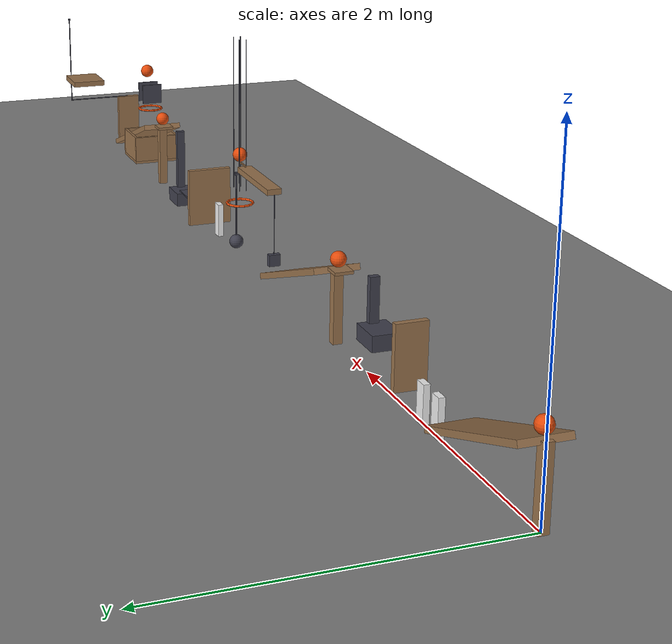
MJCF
<mujoco model="gravity_cascade_with_passive_guides">
  <compiler angle="radian"/>
  <option timestep="0.002"/>
  <worldbody>
    <geom name="floor" type="plane" size="16 16 0.1" friction="0.7 0 0"/>
    <body name="ramp1">
      <geom name="ramp1_deck" type="box" pos="0.469846 0 0.302216" size="0.5 0.15 0.02" euler="0 0.349066 0" friction="0.7 0 0" solref="0.01 0.690107" rgba="0.6 0.45 0.3 1"/>
      <geom name="ramp1_leg" type="box" pos="0 0 0.236613" size="0.03 0.03 0.236613" friction="0.7 0 0" solref="0.01 0.690107" rgba="0.6 0.45 0.3 1"/>
    </body>
    <body name="ball1" pos="0.0239414 0 0.539005">
      <freejoint/>
      <geom name="ball1" type="sphere" pos="0 0 0" size="0.05" mass="0.2" condim="6" friction="0.7 0 0" solref="0.01 0.690107" rgba="0.9 0.3 0.05 1"/>
    </body>
    <body name="domino1" pos="1.08653 0 0.12">
      <freejoint/>
      <geom name="domino1" type="box" pos="0 0 0" size="0.04 0.02 0.12" mass="0.25" friction="0.7 0 0" solref="0.01 0.690107" rgba="0.95 0.95 0.95 1"/>
    </body>
    <body name="domino2" pos="1.26653 0 0.12">
      <freejoint/>
      <geom name="domino2" type="box" pos="0 0 0" size="0.04 0.02 0.12" mass="0.25" friction="0.7 0 0" solref="0.01 0.690107" rgba="0.95 0.95 0.95 1"/>
    </body>
    <body name="flap1" pos="1.44653 0 0.12">
      <joint name="flap1_hinge" type="hinge" pos="0 0 0" axis="0 1 0" limited="true" range="0 1.13446" damping="0.04"/>
      <geom name="flap1" type="box" pos="0 0 0.2" size="0.02 0.1 0.2" mass="0.3" friction="0.7 0 0" solref="0.01 0.690107" rgba="0.6 0.45 0.3 1"/>
    </body>
    <body name="cart1" pos="1.85653 0 0.28">
      <joint name="cart1_track" type="slide" pos="0 0 0" axis="1 0 0" limited="true" range="0 0.55" damping="0.2"/>
      <geom name="cart1" type="box" pos="0 0 0" size="0.11 0.09 0.05" mass="0.498" friction="0.7 0 0" solref="0.01 0.690107" rgba="0.25 0.25 0.3 1"/>
      <geom name="cart1 pusher" type="box" pos="0.09 0 0.17" size="0.02 0.03 0.16" mass="0.002" friction="0.7 0 0" solref="0.01 0.690107" rgba="0.25 0.25 0.3 1"/>
    </body>
    <body name="ramp2">
      <geom name="ramp2_deck" type="box" pos="2.95454 0 0.302216" size="0.5 0.15 0.02" euler="0 0.349066 0" friction="0.7 0 0" solref="0.01 0.690107" rgba="0.6 0.45 0.3 1"/>
      <geom name="ramp2_leg" type="box" pos="2.48469 0 0.236613" size="0.03 0.03 0.236613" friction="0.7 0 0" solref="0.01 0.690107" rgba="0.6 0.45 0.3 1"/>
    </body>
    <body name="ramp2 starter">
      <geom name="ramp2 starter" type="box" pos="2.43153 0 0.48202" size="0.06 0.06 0.01" friction="0.7 0 0" solref="0.01 0.690107" rgba="0.6 0.45 0.3 1"/>
    </body>
    <body name="ball2" pos="2.46653 0 0.54202">
      <freejoint/>
      <geom name="ball2" type="sphere" pos="0 0 0" size="0.05" mass="0.2" condim="6" friction="0.7 0 0" solref="0.01 0.690107" rgba="0.9 0.3 0.05 1"/>
    </body>
    <body name="lever1" pos="7.74245 0 1.3">
      <joint name="lever1_hinge" type="hinge" pos="0 0 0" axis="0 1 0" limited="true" range="-0.785398 0" damping="0.04"/>
      <geom name="lever1" type="box" pos="-3.87123 0 -0.65" size="0.3 0.05 0.02" mass="0.49" friction="0.7 0 0" solref="0.01 0.690107" rgba="0.6 0.45 0.3 1"/>
      <geom name="lever1 left striker" type="box" pos="-4.17123 0 -1.12" size="0.02 0.04 0.04" mass="0.004" friction="0.7 0 0" solref="0.01 0.690107" rgba="0.25 0.25 0.3 1"/>
      <geom name="lever1 striker stem" type="capsule" size="0.003" fromto="-4.17123 0 -0.67 -4.17123 0 -1.08" mass="0.003" friction="0.7 0 0" solref="0.01 0.690107" rgba="0.25 0.25 0.3 1"/>
      <geom name="lever1 launch tongue" type="box" pos="-3.53623 0 -0.625" size="0.065 0.005 0.005" mass="0.003" friction="0.7 0 0" solref="0.01 0.690107" rgba="0.6 0.45 0.3 1"/>
    </body>
    <body name="ball3" pos="4.26623 0 0.73">
      <freejoint/>
      <geom name="ball3" type="sphere" pos="0 0 0" size="0.05" mass="0.2" condim="6" friction="0.7 0 0" solref="0.01 0.690107" rgba="0.9 0.3 0.05 1"/>
    </body>
    <body name="ball3 guide near left">
      <geom name="ball3 guide near left" type="box" pos="4.20623 0.025 1.015" size="0.002 0.002 0.535" friction="0.7 0 0" solref="0.01 0.690107" rgba="0.25 0.25 0.3 1"/>
    </body>
    <body name="ball3 guide near right">
      <geom name="ball3 guide near right" type="box" pos="4.20623 -0.025 1.015" size="0.002 0.002 0.535" friction="0.7 0 0" solref="0.01 0.690107" rgba="0.25 0.25 0.3 1"/>
    </body>
    <body name="ball3 guide far left">
      <geom name="ball3 guide far left" type="box" pos="4.32623 0.025 1.015" size="0.002 0.002 0.535" friction="0.7 0 0" solref="0.01 0.690107" rgba="0.25 0.25 0.3 1"/>
    </body>
    <body name="ball3 guide far right">
      <geom name="ball3 guide far right" type="box" pos="4.32623 -0.025 1.015" size="0.002 0.002 0.535" friction="0.7 0 0" solref="0.01 0.690107" rgba="0.25 0.25 0.3 1"/>
    </body>
    <body name="ring1">
      <geom name="ring1_00" type="capsule" size="0.008" fromto="4.35823 0 0.38 4.35122 0.0352069 0.38" friction="0.7 0 0" solref="0.01 0.690107" rgba="0.9 0.3 0.05 1"/>
      <geom name="ring1_01" type="capsule" size="0.008" fromto="4.35122 0.0352069 0.38 4.33128 0.0650538 0.38" friction="0.7 0 0" solref="0.01 0.690107" rgba="0.9 0.3 0.05 1"/>
      <geom name="ring1_02" type="capsule" size="0.008" fromto="4.33128 0.0650538 0.38 4.30143 0.0849969 0.38" friction="0.7 0 0" solref="0.01 0.690107" rgba="0.9 0.3 0.05 1"/>
      <geom name="ring1_03" type="capsule" size="0.008" fromto="4.30143 0.0849969 0.38 4.26623 0.092 0.38" friction="0.7 0 0" solref="0.01 0.690107" rgba="0.9 0.3 0.05 1"/>
      <geom name="ring1_04" type="capsule" size="0.008" fromto="4.26623 0.092 0.38 4.23102 0.0849969 0.38" friction="0.7 0 0" solref="0.01 0.690107" rgba="0.9 0.3 0.05 1"/>
      <geom name="ring1_05" type="capsule" size="0.008" fromto="4.23102 0.0849969 0.38 4.20117 0.0650538 0.38" friction="0.7 0 0" solref="0.01 0.690107" rgba="0.9 0.3 0.05 1"/>
      <geom name="ring1_06" type="capsule" size="0.008" fromto="4.20117 0.0650538 0.38 4.18123 0.0352069 0.38" friction="0.7 0 0" solref="0.01 0.690107" rgba="0.9 0.3 0.05 1"/>
      <geom name="ring1_07" type="capsule" size="0.008" fromto="4.18123 0.0352069 0.38 4.17423 1.12668e-17 0.38" friction="0.7 0 0" solref="0.01 0.690107" rgba="0.9 0.3 0.05 1"/>
      <geom name="ring1_08" type="capsule" size="0.008" fromto="4.17423 1.12668e-17 0.38 4.18123 -0.0352069 0.38" friction="0.7 0 0" solref="0.01 0.690107" rgba="0.9 0.3 0.05 1"/>
      <geom name="ring1_09" type="capsule" size="0.008" fromto="4.18123 -0.0352069 0.38 4.20117 -0.0650538 0.38" friction="0.7 0 0" solref="0.01 0.690107" rgba="0.9 0.3 0.05 1"/>
      <geom name="ring1_10" type="capsule" size="0.008" fromto="4.20117 -0.0650538 0.38 4.23102 -0.0849969 0.38" friction="0.7 0 0" solref="0.01 0.690107" rgba="0.9 0.3 0.05 1"/>
      <geom name="ring1_11" type="capsule" size="0.008" fromto="4.23102 -0.0849969 0.38 4.26623 -0.092 0.38" friction="0.7 0 0" solref="0.01 0.690107" rgba="0.9 0.3 0.05 1"/>
      <geom name="ring1_12" type="capsule" size="0.008" fromto="4.26623 -0.092 0.38 4.30143 -0.0849969 0.38" friction="0.7 0 0" solref="0.01 0.690107" rgba="0.9 0.3 0.05 1"/>
      <geom name="ring1_13" type="capsule" size="0.008" fromto="4.30143 -0.0849969 0.38 4.33128 -0.0650538 0.38" friction="0.7 0 0" solref="0.01 0.690107" rgba="0.9 0.3 0.05 1"/>
      <geom name="ring1_14" type="capsule" size="0.008" fromto="4.33128 -0.0650538 0.38 4.35122 -0.0352069 0.38" friction="0.7 0 0" solref="0.01 0.690107" rgba="0.9 0.3 0.05 1"/>
      <geom name="ring1_15" type="capsule" size="0.008" fromto="4.35122 -0.0352069 0.38 4.35823 -2.25335e-17 0.38" friction="0.7 0 0" solref="0.01 0.690107" rgba="0.9 0.3 0.05 1"/>
    </body>
    <body name="pendulum1" pos="8.69245 0 0.64">
      <joint name="pendulum1_hinge" type="hinge" pos="0 0 0" axis="0 1 0" limited="true" range="-0.698132 0" damping="0.04"/>
      <geom name="pendulum1" type="sphere" pos="-4.34623 0 -0.57" size="0.05" mass="0.05" friction="0.7 0 0" solref="0.01 0.690107" rgba="0.25 0.25 0.3 1"/>
      <geom name="pendulum1 rod" type="capsule" size="0.005" fromto="-4.34623 0 -0.07 -4.34623 0 -0.52" mass="0.005" friction="0.7 0 0" solref="0.01 0.690107" rgba="0.25 0.25 0.3 1"/>
      <geom name="pendulum1 pivot ballast" type="box" pos="-4.34623 0 -0.07" size="0.01 0.01 0.01" mass="0.295" friction="0.7 0 0" solref="0.01 0.690107" rgba="0.25 0.25 0.3 1"/>
    </body>
    <body name="domino3" pos="4.73482 0 0.12">
      <freejoint/>
      <geom name="domino3" type="box" pos="0 0 0" size="0.04 0.02 0.12" mass="0.25" friction="0.7 0 0" solref="0.01 0.690107" rgba="0.95 0.95 0.95 1"/>
    </body>
    <body name="door1" pos="4.97482 0 0.02">
      <joint name="door1_hinge" type="hinge" pos="0 0 0" axis="0 1 0" limited="true" range="0 1.22173" damping="0.04"/>
      <geom name="door1" type="box" pos="0 0 0.21" size="0.02 0.16 0.21" mass="0.45" friction="0.7 0 0" solref="0.01 0.690107" rgba="0.6 0.45 0.3 1"/>
    </body>
    <body name="block1" pos="5.09482 0 0.06">
      <freejoint/>
      <geom name="block1" type="box" pos="0 0 0" size="0.06 0.06 0.06" mass="0.35" friction="0.7 0 0" solref="0.01 0.690107" rgba="0.6 0.45 0.3 1"/>
    </body>
    <body name="block1 guide roof">
      <geom name="block1 guide roof" type="box" pos="5.26982 0 0.126" size="0.25 0.065 0.005" friction="0.7 0 0" solref="0.01 0.690107" rgba="0.25 0.25 0.3 1"/>
    </body>
    <body name="cart2" pos="5.61482 0 0.055">
      <joint name="cart2_track" type="slide" pos="0 0 0" axis="1 0 0" limited="true" range="0 0.5" damping="0.2"/>
      <geom name="cart2" type="box" pos="0 0 0" size="0.11 0.09 0.05" mass="0.498" friction="0.7 0 0" solref="0.01 0.690107" rgba="0.25 0.25 0.3 1"/>
      <geom name="cart2 pusher" type="box" pos="0.09 0 0.27" size="0.02 0.03 0.23" mass="0.002" friction="0.7 0 0" solref="0.01 0.690107" rgba="0.25 0.25 0.3 1"/>
    </body>
    <body name="ramp3">
      <geom name="ramp3_deck" type="box" pos="6.68283 0 0.302216" size="0.5 0.15 0.02" euler="0 0.349066 0" friction="0.7 0 0" solref="0.01 0.690107" rgba="0.6 0.45 0.3 1"/>
      <geom name="ramp3_leg" type="box" pos="6.21298 0 0.236613" size="0.03 0.03 0.236613" friction="0.7 0 0" solref="0.01 0.690107" rgba="0.6 0.45 0.3 1"/>
    </body>
    <body name="ramp3 starter">
      <geom name="ramp3 starter" type="box" pos="6.15982 0 0.48202" size="0.06 0.06 0.01" friction="0.7 0 0" solref="0.01 0.690107" rgba="0.6 0.45 0.3 1"/>
    </body>
    <body name="ball4" pos="6.19482 0 0.54202">
      <freejoint/>
      <geom name="ball4" type="sphere" pos="0 0 0" size="0.05" mass="0.2" condim="6" friction="0.7 0 0" solref="0.01 0.690107" rgba="0.9 0.3 0.05 1"/>
    </body>
    <body name="flap2" pos="7.27952 0 0.5">
      <joint name="flap2_hinge" type="hinge" pos="0 0 0" axis="0 1 0" limited="true" range="-1.0472 0" damping="0.04"/>
      <geom name="flap2" type="box" pos="0 0 -0.19" size="0.02 0.09 0.19" mass="0.277" friction="0.7 0 0" solref="0.01 0.690107" rgba="0.6 0.45 0.3 1"/>
      <geom name="flap2 outboard bridge" type="capsule" size="0.004" fromto="0 0 0 0 0.5 0" mass="0.001" friction="0.7 0 0" solref="0.01 0.690107" rgba="0.25 0.25 0.3 1"/>
      <geom name="flap2 upper striker" type="capsule" size="0.004" fromto="0 0.5 0 0 0.5 0.7" mass="0.001" friction="0.7 0 0" solref="0.01 0.690107" rgba="0.25 0.25 0.3 1"/>
      <geom name="flap2 striker cap" type="box" pos="0 0.5 0.7" size="0.008 0.008 0.008" mass="0.001" friction="0.7 0 0" solref="0.01 0.690107" rgba="0.25 0.25 0.3 1"/>
    </body>
    <body name="shelf1">
      <geom name="shelf1" type="box" pos="6.7583 0.5 0.78" size="0.15 0.125 0.02" friction="0.7 0 0" solref="0.01 0.690107" rgba="0.6 0.45 0.3 1"/>
    </body>
    <body name="ball5" pos="6.6333 0 0.85">
      <freejoint/>
      <geom name="ball5" type="sphere" pos="0 0 0" size="0.05" mass="0.2" condim="6" friction="0.7 0 0" solref="0.01 0.690107" rgba="0.9 0.3 0.05 1"/>
    </body>
    <body name="ring2">
      <geom name="ring2_00" type="capsule" size="0.008" fromto="6.6503 0 0.55 6.6433 0.0352069 0.55" friction="0.7 0 0" solref="0.01 0.690107" rgba="0.9 0.3 0.05 1"/>
      <geom name="ring2_01" type="capsule" size="0.008" fromto="6.6433 0.0352069 0.55 6.62335 0.0650538 0.55" friction="0.7 0 0" solref="0.01 0.690107" rgba="0.9 0.3 0.05 1"/>
      <geom name="ring2_02" type="capsule" size="0.008" fromto="6.62335 0.0650538 0.55 6.59351 0.0849969 0.55" friction="0.7 0 0" solref="0.01 0.690107" rgba="0.9 0.3 0.05 1"/>
      <geom name="ring2_03" type="capsule" size="0.008" fromto="6.59351 0.0849969 0.55 6.5583 0.092 0.55" friction="0.7 0 0" solref="0.01 0.690107" rgba="0.9 0.3 0.05 1"/>
      <geom name="ring2_04" type="capsule" size="0.008" fromto="6.5583 0.092 0.55 6.52309 0.0849969 0.55" friction="0.7 0 0" solref="0.01 0.690107" rgba="0.9 0.3 0.05 1"/>
      <geom name="ring2_05" type="capsule" size="0.008" fromto="6.52309 0.0849969 0.55 6.49324 0.0650538 0.55" friction="0.7 0 0" solref="0.01 0.690107" rgba="0.9 0.3 0.05 1"/>
      <geom name="ring2_06" type="capsule" size="0.008" fromto="6.49324 0.0650538 0.55 6.4733 0.0352069 0.55" friction="0.7 0 0" solref="0.01 0.690107" rgba="0.9 0.3 0.05 1"/>
      <geom name="ring2_07" type="capsule" size="0.008" fromto="6.4733 0.0352069 0.55 6.4663 1.12668e-17 0.55" friction="0.7 0 0" solref="0.01 0.690107" rgba="0.9 0.3 0.05 1"/>
      <geom name="ring2_08" type="capsule" size="0.008" fromto="6.4663 1.12668e-17 0.55 6.4733 -0.0352069 0.55" friction="0.7 0 0" solref="0.01 0.690107" rgba="0.9 0.3 0.05 1"/>
      <geom name="ring2_09" type="capsule" size="0.008" fromto="6.4733 -0.0352069 0.55 6.49324 -0.0650538 0.55" friction="0.7 0 0" solref="0.01 0.690107" rgba="0.9 0.3 0.05 1"/>
      <geom name="ring2_10" type="capsule" size="0.008" fromto="6.49324 -0.0650538 0.55 6.52309 -0.0849969 0.55" friction="0.7 0 0" solref="0.01 0.690107" rgba="0.9 0.3 0.05 1"/>
      <geom name="ring2_11" type="capsule" size="0.008" fromto="6.52309 -0.0849969 0.55 6.5583 -0.092 0.55" friction="0.7 0 0" solref="0.01 0.690107" rgba="0.9 0.3 0.05 1"/>
      <geom name="ring2_12" type="capsule" size="0.008" fromto="6.5583 -0.092 0.55 6.59351 -0.0849969 0.55" friction="0.7 0 0" solref="0.01 0.690107" rgba="0.9 0.3 0.05 1"/>
      <geom name="ring2_13" type="capsule" size="0.008" fromto="6.59351 -0.0849969 0.55 6.62335 -0.0650538 0.55" friction="0.7 0 0" solref="0.01 0.690107" rgba="0.9 0.3 0.05 1"/>
      <geom name="ring2_14" type="capsule" size="0.008" fromto="6.62335 -0.0650538 0.55 6.6433 -0.0352069 0.55" friction="0.7 0 0" solref="0.01 0.690107" rgba="0.9 0.3 0.05 1"/>
      <geom name="ring2_15" type="capsule" size="0.008" fromto="6.6433 -0.0352069 0.55 6.6503 -2.25335e-17 0.55" friction="0.7 0 0" solref="0.01 0.690107" rgba="0.9 0.3 0.05 1"/>
    </body>
    <body name="ball5 near guide">
      <geom name="ball5 near guide" type="box" pos="6.4983 0 0.6825" size="0.005 0.08 0.0775" friction="0.7 0 0" solref="0.01 0.690107" rgba="0.25 0.25 0.3 1"/>
    </body>
    <body name="ball5 far guide">
      <geom name="ball5 far guide" type="box" pos="6.6183 0 0.6825" size="0.005 0.08 0.0775" friction="0.7 0 0" solref="0.01 0.690107" rgba="0.25 0.25 0.3 1"/>
    </body>
    <body name="bin1">
      <geom name="bin1_base" type="box" pos="6.5583 0 0.14" size="0.18 0.18 0.01" friction="0.7 0 0" solref="0.01 0.690107" rgba="0.6 0.45 0.3 1"/>
      <geom name="bin1_near_wall" type="box" pos="6.3883 0 0.25" size="0.01 0.18 0.1" friction="0.7 0 0" solref="0.01 0.690107" rgba="0.6 0.45 0.3 1"/>
      <geom name="bin1_far_wall" type="box" pos="6.7283 0 0.25" size="0.01 0.18 0.1" friction="0.7 0 0" solref="0.01 0.690107" rgba="0.6 0.45 0.3 1"/>
      <geom name="bin1_left_wall" type="box" pos="6.5583 0.17 0.25" size="0.16 0.01 0.1" friction="0.7 0 0" solref="0.01 0.690107" rgba="0.6 0.45 0.3 1"/>
      <geom name="bin1_right_wall" type="box" pos="6.5583 -0.17 0.25" size="0.16 0.01 0.1" friction="0.7 0 0" solref="0.01 0.690107" rgba="0.6 0.45 0.3 1"/>
    </body>
  </worldbody>
  <keyframe>
    <key name="start" qpos="0.0239414 0 0.539005 1 0 0 0 1.08653 0 0.12 1 0 0 0 1.26653 0 0.12 1 0 0 0 0 0 2.46653 0 0.54202 1 0 0 0 0 4.26623 0 0.73 1 0 0 0 0 4.73482 0 0.12 1 0 0 0 0 5.09482 0 0.06 1 0 0 0 0 6.19482 0 0.54202 1 0 0 0 0 6.6333 0 0.85 1 0 0 0" qvel="0 0 0 0 0 0 0 0 0 0 0 0 0 0 0 0 0 0 0 0 0 0 0 0 0 0 0 0 0 0 0 0 0 0 0 0 0 0 0 0 0 0 0 0 0 0 0 0 0 0 0 0 0 0 0 0 0 0 0 0 0"/>
  </keyframe>
</mujoco>
